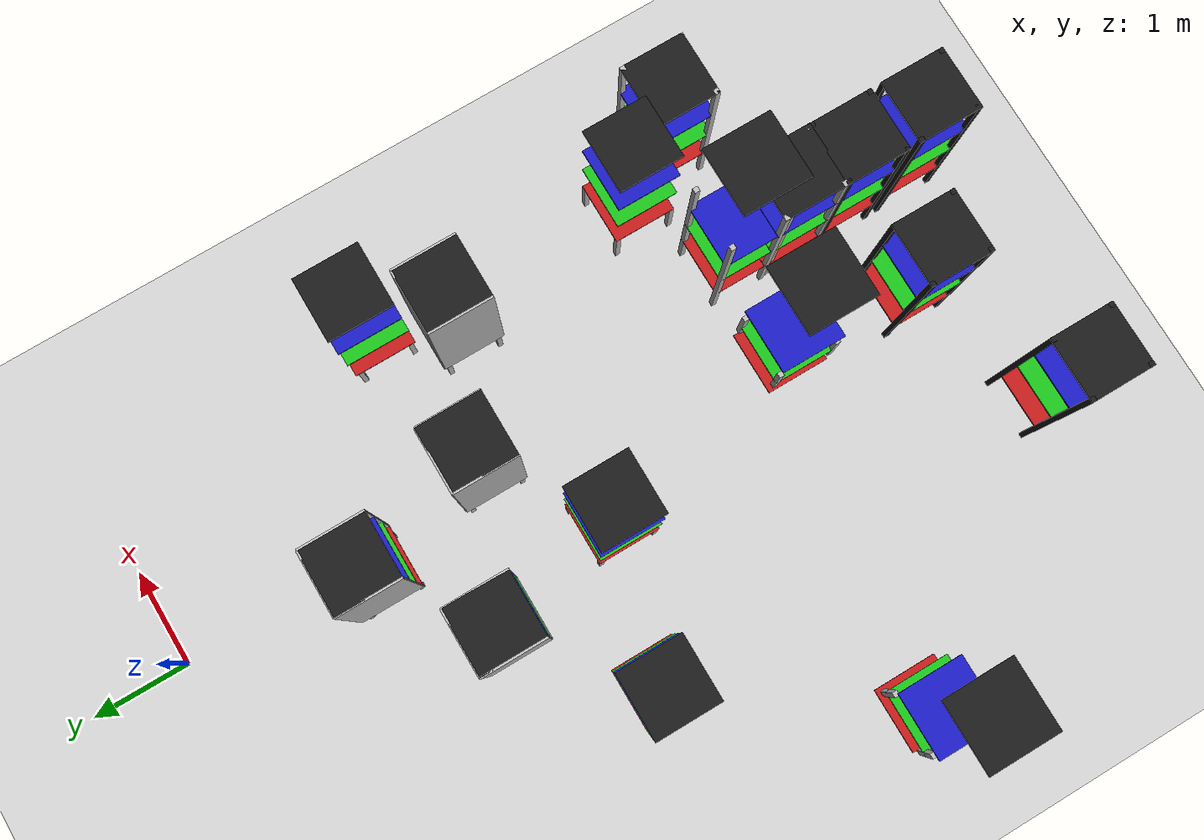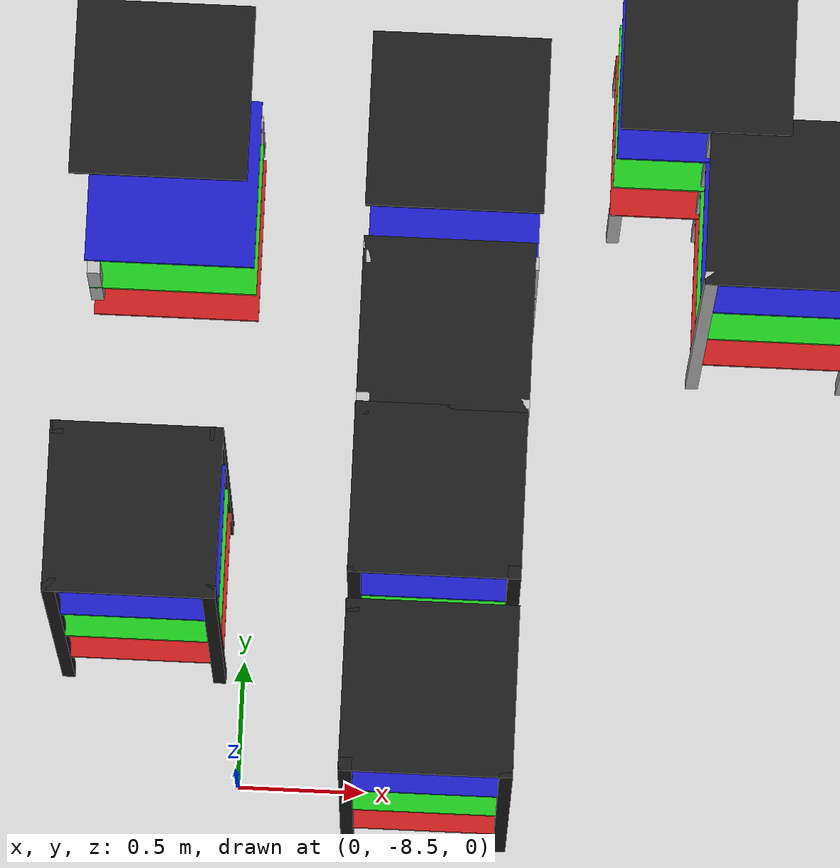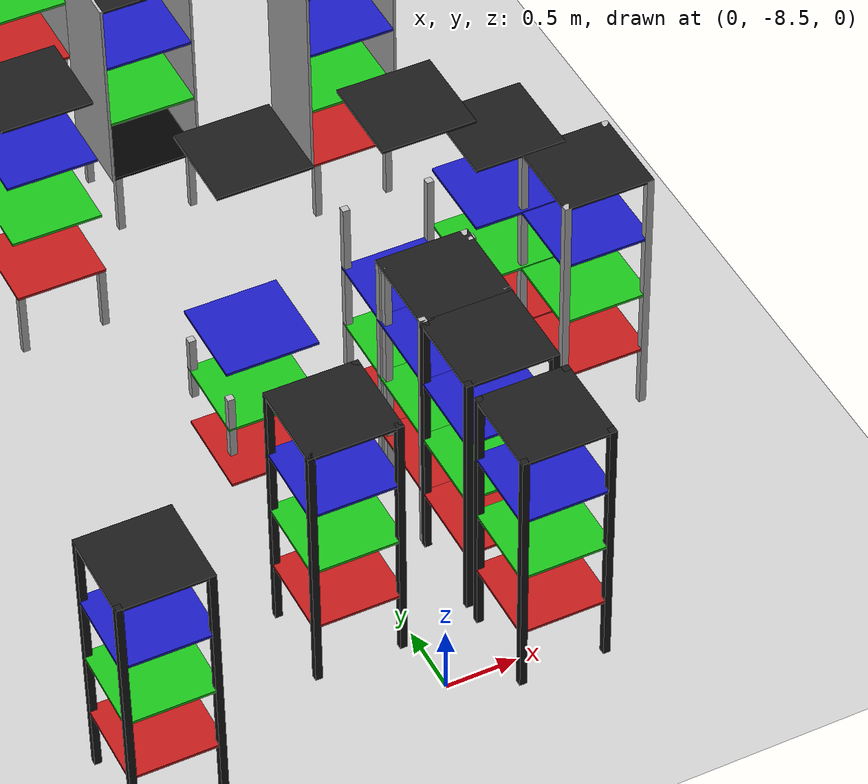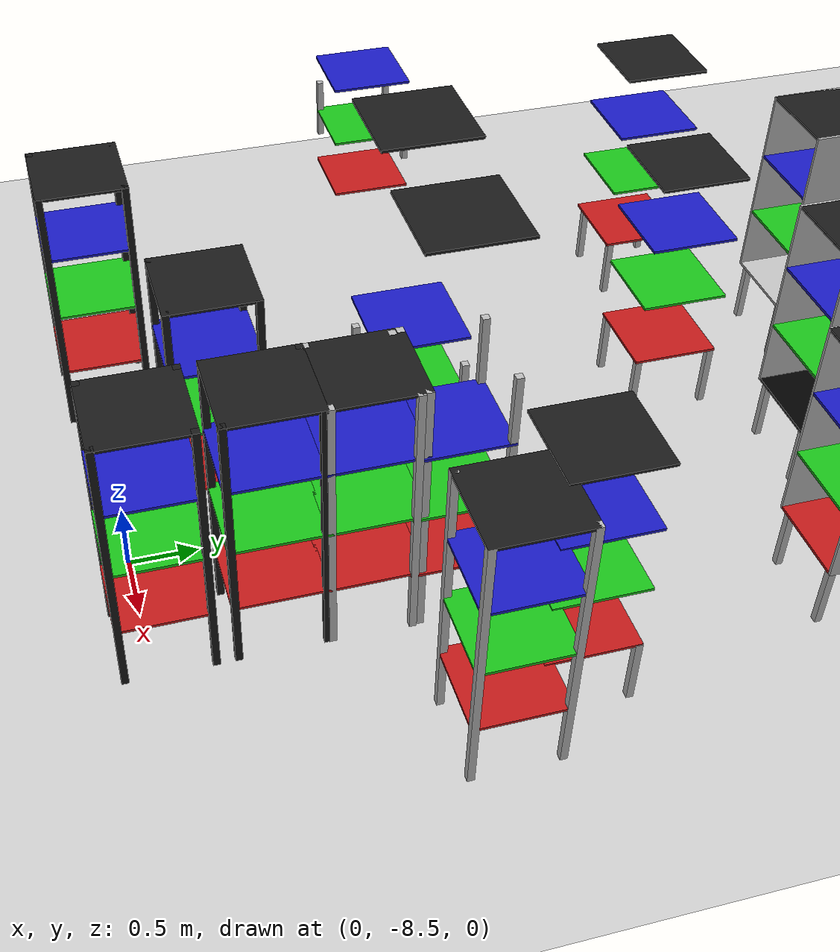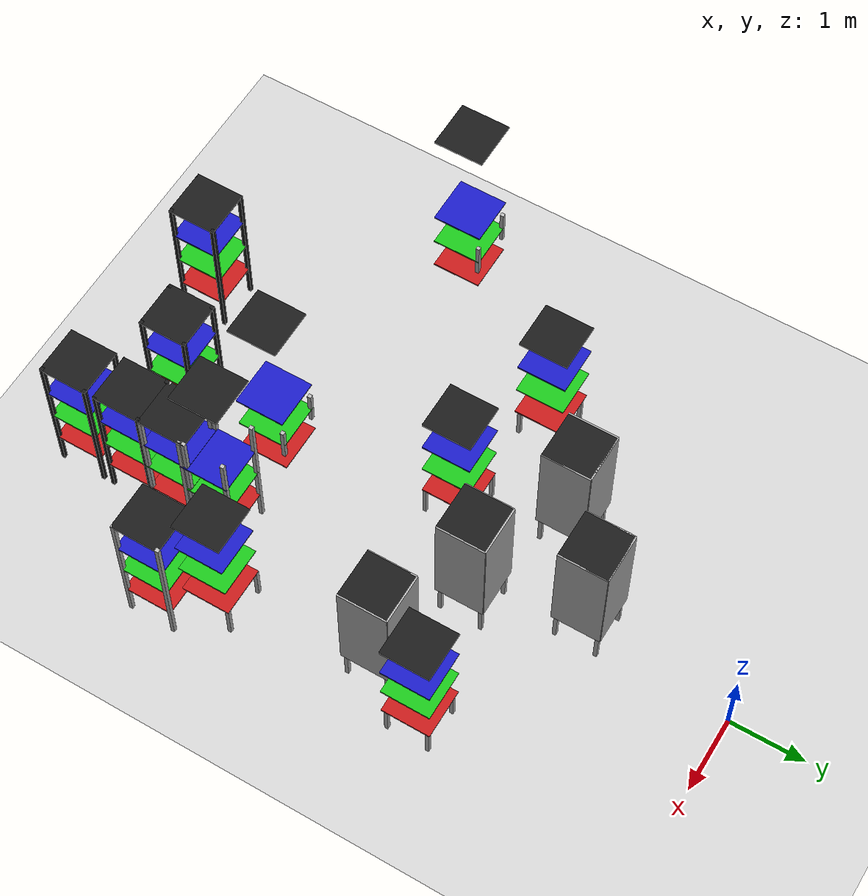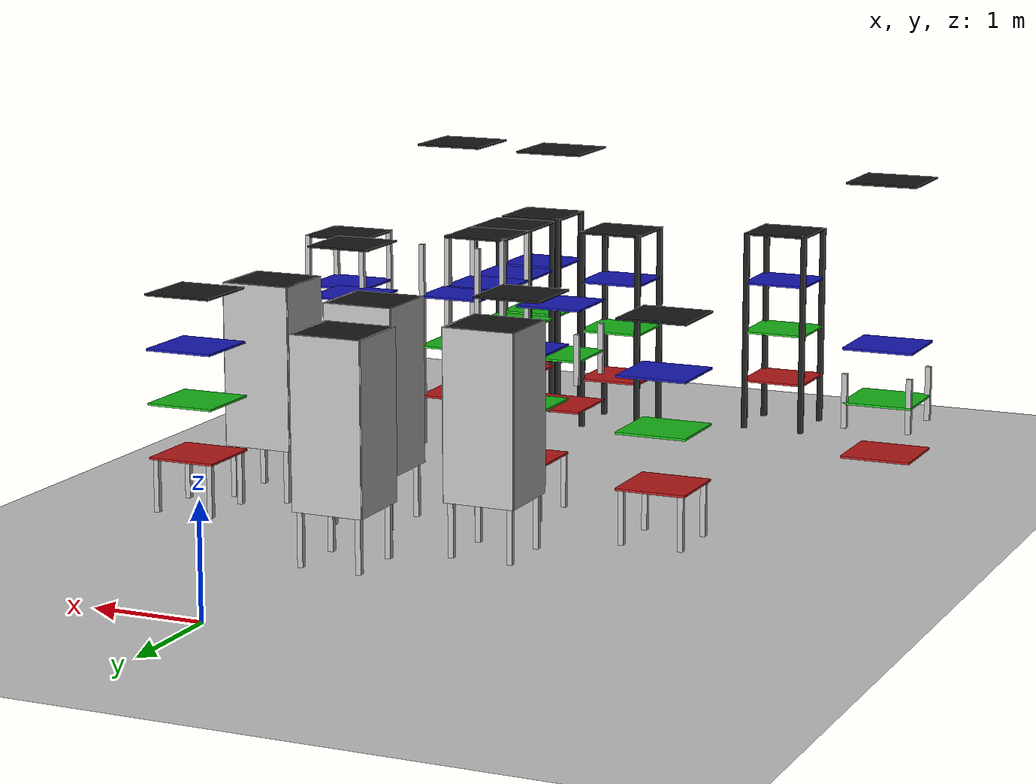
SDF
<sdf version="1.6">
 <world name="default">
  <model name="ground_plane">
   <static>1</static>
   <link name="link">
    <collision name="collision">
     <geometry><plane><normal>0 0 1</normal><size>50 50</size></plane></geometry>
     <surface><friction><ode><mu>100</mu><mu2>50</mu2></ode></friction></surface>
    </collision>
    <visual name="visual">
     <cast_shadows>0</cast_shadows>
     <geometry><plane><normal>0 0 1</normal><size>100 100</size></plane></geometry>
     <material>
      <script><uri>file://media/materials/scripts/gazebo.material</uri><name>Gazebo/Grey</name></script>
     </material>
    </visual>
    <velocity_decay><linear>0</linear><angular>0</angular></velocity_decay>
   </link>
  </model>
  <model name="warehouse_shelf_8">
   <static>1</static>
   <pose>-0.228834 -2.00958 0 0 -0 0</pose>
   <link name="main_block">
    <pose>0 0 1.255 0 -0 0</pose>
    <collision name="collision"><geometry><box><size>0.65 0.65 1.51</size></box></geometry></collision>
   </link>
   <link name="leg_1">
    <pose>0.275 0.275 0.25 0 -0 0</pose>
    <collision name="collision"><geometry><box><size>0.05 0.05 0.5</size></box></geometry></collision>
    <visual name="visual"><geometry><box><size>0.05 0.05 0.5</size></box></geometry></visual>
   </link>
   <link name="leg_2">
    <pose>-0.275 0.275 0.25 0 -0 0</pose>
    <collision name="collision"><geometry><box><size>0.05 0.05 0.5</size></box></geometry></collision>
    <visual name="visual"><geometry><box><size>0.05 0.05 0.5</size></box></geometry></visual>
   </link>
   <link name="leg_3">
    <pose>-0.275 -0.275 0.25 0 -0 0</pose>
    <collision name="collision"><geometry><box><size>0.05 0.05 0.5</size></box></geometry></collision>
    <visual name="visual"><geometry><box><size>0.05 0.05 0.5</size></box></geometry></visual>
   </link>
   <link name="leg_4">
    <pose>0.275 -0.275 0.25 0 -0 0</pose>
    <collision name="collision"><geometry><box><size>0.05 0.05 0.5</size></box></geometry></collision>
    <visual name="visual"><geometry><box><size>0.05 0.05 0.5</size></box></geometry></visual>
   </link>
   <link name="shelf_0">
    <pose>0 0 0.5 0 -0 0</pose>
    <visual name="visual">
     <geometry><box><size>0.648 0.648 0.02</size></box></geometry>
     <material>
      <ambient>0.9 0.1 0.1 1</ambient>
      <diffuse>0.75 0.1 0.1 1</diffuse>
      <specular>0 0 0 0</specular>
      <emissive>0 0 0 1</emissive>
     </material>
    </visual>
   </link>
   <link name="shelf_1">
    <pose>0 0 1 0 -0 0</pose>
    <visual name="visual">
     <geometry><box><size>0.648 0.648 0.02</size></box></geometry>
     <material>
      <ambient>0.1 0.9 0.1 1</ambient>
      <diffuse>0.1 0.75 0.1 1</diffuse>
      <specular>1 1 1 0</specular>
      <emissive>0 0 0 1</emissive>
     </material>
    </visual>
   </link>
   <link name="shelf_2">
    <pose>0 0 1.5 0 -0 0</pose>
    <visual name="visual">
     <geometry><box><size>0.648 0.648 0.02</size></box></geometry>
     <material>
      <ambient>0.1 0.1 0.9 1</ambient>
      <diffuse>0.1 0.1 0.75 1</diffuse>
      <specular>0 0 0 0</specular>
      <emissive>0 0 0 1</emissive>
     </material>
    </visual>
   </link>
   <link name="shelf_top">
    <pose>0 0 2 0 -0 0</pose>
    <visual name="visual">
     <geometry><box><size>0.648 0.648 0.02</size></box></geometry>
     <material>
      <ambient>0.1 0.1 0.1 1</ambient>
      <diffuse>0.1 0.1 0.1 1</diffuse>
      <specular>0 0 0 0</specular>
      <emissive>0 0 0 1</emissive>
     </material>
    </visual>
   </link>
   <link name="side_left">
    <pose>0.324 0 1.25 0 -0 0</pose>
    <visual name="visual"><geometry><box><size>0.02 0.65 1.52</size></box></geometry></visual>
   </link>
   <link name="side_right">
    <pose>-0.324 0 1.25 0 -0 0</pose>
    <visual name="visual"><geometry><box><size>0.02 0.65 1.52</size></box></geometry></visual>
   </link>
   <link name="side_back">
    <pose>0 0.324 1.25 0 -0 0</pose>
    <visual name="visual"><geometry><box><size>0.65 0.02 1.52</size></box></geometry></visual>
   </link>
  </model>
  <model name="warehouse_shelf_13">
   <static>1</static>
   <pose>-1.25921 -2.79718 0 0 -0 0</pose>
   <link name="main_block">
    <pose>0 0 1.255 0 -0 0</pose>
    <collision name="collision"><geometry><box><size>0.65 0.65 1.51</size></box></geometry></collision>
   </link>
   <link name="leg_1">
    <pose>0.275 0.275 0.25 0 -0 0</pose>
    <collision name="collision"><geometry><box><size>0.05 0.05 0.5</size></box></geometry></collision>
    <visual name="visual"><geometry><box><size>0.05 0.05 0.5</size></box></geometry></visual>
   </link>
   <link name="leg_2">
    <pose>-0.275 0.275 0.25 0 -0 0</pose>
    <collision name="collision"><geometry><box><size>0.05 0.05 0.5</size></box></geometry></collision>
    <visual name="visual"><geometry><box><size>0.05 0.05 0.5</size></box></geometry></visual>
   </link>
   <link name="leg_3">
    <pose>-0.275 -0.275 0.25 0 -0 0</pose>
    <collision name="collision"><geometry><box><size>0.05 0.05 0.5</size></box></geometry></collision>
    <visual name="visual"><geometry><box><size>0.05 0.05 0.5</size></box></geometry></visual>
   </link>
   <link name="leg_4">
    <pose>0.275 -0.275 0.25 0 -0 0</pose>
    <collision name="collision"><geometry><box><size>0.05 0.05 0.5</size></box></geometry></collision>
    <visual name="visual"><geometry><box><size>0.05 0.05 0.5</size></box></geometry></visual>
   </link>
   <link name="shelf_0">
    <pose>0 0 0.5 0 -0 0</pose>
    <visual name="visual">
     <geometry><box><size>0.648 0.648 0.02</size></box></geometry>
     <material><ambient>0.9 0.1 0.1 1</ambient><diffuse>0.75 0.75 0.75 1</diffuse></material>
    </visual>
   </link>
   <link name="shelf_1">
    <pose>0 0 1 0 -0 0</pose>
    <visual name="visual">
     <geometry><box><size>0.648 0.648 0.02</size></box></geometry>
     <material><ambient>0.1 0.9 0.1 1</ambient><diffuse>0.1 0.75 0.1 1</diffuse></material>
    </visual>
   </link>
   <link name="shelf_2">
    <pose>0 0 1.5 0 -0 0</pose>
    <visual name="visual">
     <geometry><box><size>0.648 0.648 0.02</size></box></geometry>
     <material><ambient>0.1 0.1 0.9 1</ambient><diffuse>0.1 0.1 0.75 1</diffuse></material>
    </visual>
   </link>
   <link name="shelf_top">
    <pose>0 0 2 0 -0 0</pose>
    <visual name="visual">
     <geometry><box><size>0.648 0.648 0.02</size></box></geometry>
     <material><ambient>0.1 0.1 0.1 1</ambient><diffuse>0.1 0.1 0.1 1</diffuse></material>
    </visual>
   </link>
   <link name="side_left">
    <pose>0.324 0 1.25 0 -0 0</pose>
    <visual name="visual"><geometry><box><size>0.02 0.65 1.52</size></box></geometry></visual>
   </link>
   <link name="side_right">
    <pose>-0.324 0 1.25 0 -0 0</pose>
    <visual name="visual"><geometry><box><size>0.02 0.65 1.52</size></box></geometry></visual>
   </link>
   <link name="side_back">
    <pose>0 0.324 1.25 0 -0 0</pose>
    <visual name="visual"><geometry><box><size>0.65 0.02 1.52</size></box></geometry></visual>
   </link>
  </model>
  <model name="warehouse_shelf_14">
   <static>1</static>
   <pose>0.162209 -3.35207 0 0 -0 0</pose>
   <link name="main_block">
    <pose>0 0 1.255 0 -0 0</pose>
    <collision name="collision"><geometry><box><size>0.65 0.65 1.51</size></box></geometry></collision>
   </link>
   <link name="leg_1">
    <pose>0.275 0.275 0.25 0 -0 0</pose>
    <collision name="collision"><geometry><box><size>0.05 0.05 0.5</size></box></geometry></collision>
    <visual name="visual"><geometry><box><size>0.05 0.05 0.5</size></box></geometry></visual>
   </link>
   <link name="leg_2">
    <pose>-0.275 0.275 0.25 0 -0 0</pose>
    <collision name="collision"><geometry><box><size>0.05 0.05 0.5</size></box></geometry></collision>
    <visual name="visual"><geometry><box><size>0.05 0.05 0.5</size></box></geometry></visual>
   </link>
   <link name="leg_3">
    <pose>-0.275 -0.275 0.25 0 -0 0</pose>
    <collision name="collision"><geometry><box><size>0.05 0.05 0.5</size></box></geometry></collision>
    <visual name="visual"><geometry><box><size>0.05 0.05 0.5</size></box></geometry></visual>
   </link>
   <link name="leg_4">
    <pose>0.275 -0.275 0.25 0 -0 0</pose>
    <collision name="collision"><geometry><box><size>0.05 0.05 0.5</size></box></geometry></collision>
    <visual name="visual"><geometry><box><size>0.05 0.05 0.5</size></box></geometry></visual>
   </link>
   <link name="shelf_0">
    <pose>0 0 0.5 0 -0 0</pose>
    <visual name="visual">
     <geometry><box><size>0.648 0.648 0.02</size></box></geometry>
     <material><ambient>0.9 0.1 0.1 1</ambient><diffuse>0 0 0 1</diffuse></material>
    </visual>
   </link>
   <link name="shelf_1">
    <pose>0 0 1 0 -0 0</pose>
    <visual name="visual">
     <geometry><box><size>0.648 0.648 0.02</size></box></geometry>
     <material><ambient>0.1 0.9 0.1 1</ambient><diffuse>0.1 0.75 0.1 1</diffuse></material>
    </visual>
   </link>
   <link name="shelf_2">
    <pose>0 0 1.5 0 -0 0</pose>
    <visual name="visual">
     <geometry><box><size>0.648 0.648 0.02</size></box></geometry>
     <material><ambient>0.1 0.1 0.9 1</ambient><diffuse>0.1 0.1 0.75 1</diffuse></material>
    </visual>
   </link>
   <link name="shelf_top">
    <pose>0 0 2 0 -0 0</pose>
    <visual name="visual">
     <geometry><box><size>0.648 0.648 0.02</size></box></geometry>
     <material><ambient>0.1 0.1 0.1 1</ambient><diffuse>0.1 0.1 0.1 1</diffuse></material>
    </visual>
   </link>
   <link name="side_left">
    <pose>0.324 0 1.25 0 -0 0</pose>
    <visual name="visual"><geometry><box><size>0.02 0.65 1.52</size></box></geometry></visual>
   </link>
   <link name="side_right">
    <pose>-0.324 0 1.25 0 -0 0</pose>
    <visual name="visual"><geometry><box><size>0.02 0.65 1.52</size></box></geometry></visual>
   </link>
   <link name="side_back">
    <pose>0 0.324 1.25 0 -0 0</pose>
    <visual name="visual"><geometry><box><size>0.65 0.02 1.52</size></box></geometry></visual>
   </link>
  </model>
  <model name="warehouse_shelf_16">
   <static>1</static>
   <pose>1.82011 -3.08516 0 0 -0 0</pose>
   <link name="main_block">
    <pose>0 0 1.255 0 -0 0</pose>
    <collision name="collision"><geometry><box><size>0.65 0.65 1.51</size></box></geometry></collision>
   </link>
   <link name="leg_1">
    <pose>0.275 0.275 0.25 0 -0 0</pose>
    <collision name="collision"><geometry><box><size>0.05 0.05 0.5</size></box></geometry></collision>
    <visual name="visual"><geometry><box><size>0.05 0.05 0.5</size></box></geometry></visual>
   </link>
   <link name="leg_2">
    <pose>-0.275 0.275 0.25 0 -0 0</pose>
    <collision name="collision"><geometry><box><size>0.05 0.05 0.5</size></box></geometry></collision>
    <visual name="visual"><geometry><box><size>0.05 0.05 0.5</size></box></geometry></visual>
   </link>
   <link name="leg_3">
    <pose>-0.275 -0.275 0.25 0 -0 0</pose>
    <collision name="collision"><geometry><box><size>0.05 0.05 0.5</size></box></geometry></collision>
    <visual name="visual"><geometry><box><size>0.05 0.05 0.5</size></box></geometry></visual>
   </link>
   <link name="leg_4">
    <pose>0.275 -0.275 0.25 0 -0 0</pose>
    <collision name="collision"><geometry><box><size>0.05 0.05 0.5</size></box></geometry></collision>
    <visual name="visual"><geometry><box><size>0.05 0.05 0.5</size></box></geometry></visual>
   </link>
   <link name="shelf_0">
    <pose>0 0 0.5 0 -0 0</pose>
    <visual name="visual">
     <geometry><box><size>0.648 0.648 0.02</size></box></geometry>
     <material><ambient>0.75 0.1 0.1 1</ambient><diffuse>0.75 0.1 0.1 1</diffuse></material>
    </visual>
   </link>
   <link name="shelf_1">
    <pose>0 0 1 0 -0 0</pose>
    <visual name="visual">
     <geometry><box><size>0.648 0.648 0.02</size></box></geometry>
     <material><ambient>0.1 0.75 0.1 1</ambient><diffuse>0.1 0.75 0.1 1</diffuse></material>
    </visual>
   </link>
   <link name="shelf_2">
    <pose>0 0 1.5 0 -0 0</pose>
    <visual name="visual">
     <geometry><box><size>0.648 0.648 0.02</size></box></geometry>
     <material><ambient>0.1 0.1 0.75 1</ambient><diffuse>0.1 0.1 0.75 1</diffuse></material>
    </visual>
   </link>
   <link name="shelf_top">
    <pose>0 0 2 0 -0 0</pose>
    <visual name="visual">
     <geometry><box><size>0.648 0.648 0.02</size></box></geometry>
     <material><ambient>0.1 0.1 0.1 1</ambient><diffuse>0.1 0.1 0.1 1</diffuse></material>
    </visual>
   </link>
  </model>
  <model name="warehouse_shelf_17">
   <static>1</static>
   <pose>1.45479 -3.84981 0 0 -0 0</pose>
   <link name="main_block">
    <pose>0 0 1.255 0 -0 0</pose>
    <collision name="collision"><geometry><box><size>0.65 0.65 1.51</size></box></geometry></collision>
   </link>
   <link name="leg_1">
    <pose>0.275 0.275 0.25 0 -0 0</pose>
    <collision name="collision"><geometry><box><size>0.05 0.05 0.5</size></box></geometry></collision>
    <visual name="visual"><geometry><box><size>0.05 0.05 0.5</size></box></geometry></visual>
   </link>
   <link name="leg_2">
    <pose>-0.275 0.275 0.25 0 -0 0</pose>
    <collision name="collision"><geometry><box><size>0.05 0.05 0.5</size></box></geometry></collision>
    <visual name="visual"><geometry><box><size>0.05 0.05 0.5</size></box></geometry></visual>
   </link>
   <link name="leg_3">
    <pose>-0.275 -0.275 0.25 0 -0 0</pose>
    <collision name="collision"><geometry><box><size>0.05 0.05 0.5</size></box></geometry></collision>
    <visual name="visual"><geometry><box><size>0.05 0.05 0.5</size></box></geometry></visual>
   </link>
   <link name="leg_4">
    <pose>0.275 -0.275 0.25 0 -0 0</pose>
    <collision name="collision"><geometry><box><size>0.05 0.05 0.5</size></box></geometry></collision>
    <visual name="visual"><geometry><box><size>0.05 0.05 0.5</size></box></geometry></visual>
   </link>
   <link name="shelf_0">
    <pose>0 0 0.5 0 -0 0</pose>
    <visual name="visual">
     <geometry><box><size>0.648 0.648 0.02</size></box></geometry>
     <material><ambient>0.75 0.1 0.1 1</ambient><diffuse>0.75 0.1 0.1 1</diffuse></material>
    </visual>
   </link>
   <link name="shelf_1">
    <pose>0 0 1 0 -0 0</pose>
    <visual name="visual">
     <geometry><box><size>0.648 0.648 0.02</size></box></geometry>
     <material><ambient>0.1 0.75 0.1 1</ambient><diffuse>0.1 0.75 0.1 1</diffuse></material>
    </visual>
   </link>
   <link name="shelf_2">
    <pose>0 0 1.5 0 -0 0</pose>
    <visual name="visual">
     <geometry><box><size>0.648 0.648 0.02</size></box></geometry>
     <material><ambient>0.1 0.1 0.75 1</ambient><diffuse>0.1 0.1 0.75 1</diffuse></material>
    </visual>
   </link>
   <link name="shelf_top">
    <pose>0 0 2 0 -0 0</pose>
    <visual name="visual">
     <geometry><box><size>0.648 0.648 0.02</size></box></geometry>
     <material><ambient>0.1 0.1 0.1 1</ambient><diffuse>0.1 0.1 0.1 1</diffuse></material>
    </visual>
   </link>
   <link name="side_left">
    <pose>0.324 0 1.25 0 -0 0</pose>
    <visual name="visual"><geometry><box><size>0.02 0.65 1.52</size></box></geometry></visual>
   </link>
   <link name="side_right">
    <pose>-0.324 0 1.25 0 -0 0</pose>
    <visual name="visual"><geometry><box><size>0.02 0.65 1.52</size></box></geometry></visual>
   </link>
   <link name="side_back">
    <pose>0 0.324 1.25 0 -0 0</pose>
    <visual name="visual"><geometry><box><size>0.65 0.02 1.52</size></box></geometry></visual>
   </link>
  </model>
  <model name="warehouse_shelf_19">
   <static>1</static>
   <pose>-2.4316 -3.7612 0 0 -0 0</pose>
   <link name="main_block">
    <pose>0 0 1.255 0 -0 0</pose>
    <collision name="collision"><geometry><box><size>0.65 0.65 1.51</size></box></geometry></collision>
   </link>
   <link name="leg_1">
    <pose>0.275 0.275 0.25 0 -0 0</pose>
    <collision name="collision"><geometry><box><size>0.05 0.05 0.5</size></box></geometry></collision>
    <visual name="visual"><geometry><box><size>0.05 0.05 0.5</size></box></geometry></visual>
   </link>
   <link name="leg_2">
    <pose>-0.275 0.275 0.25 0 -0 0</pose>
    <collision name="collision"><geometry><box><size>0.05 0.05 0.5</size></box></geometry></collision>
    <visual name="visual"><geometry><box><size>0.05 0.05 0.5</size></box></geometry></visual>
   </link>
   <link name="leg_3">
    <pose>-0.275 -0.275 0.25 0 -0 0</pose>
    <collision name="collision"><geometry><box><size>0.05 0.05 0.5</size></box></geometry></collision>
    <visual name="visual"><geometry><box><size>0.05 0.05 0.5</size></box></geometry></visual>
   </link>
   <link name="leg_4">
    <pose>0.275 -0.275 0.25 0 -0 0</pose>
    <collision name="collision"><geometry><box><size>0.05 0.05 0.5</size></box></geometry></collision>
    <visual name="visual"><geometry><box><size>0.05 0.05 0.5</size></box></geometry></visual>
   </link>
   <link name="shelf_0">
    <pose>0 0 0.5 0 -0 0</pose>
    <visual name="visual">
     <geometry><box><size>0.648 0.648 0.02</size></box></geometry>
     <material><ambient>0.75 0.1 0.1 1</ambient><diffuse>0.75 0.1 0.1 1</diffuse></material>
    </visual>
   </link>
   <link name="shelf_1">
    <pose>0 0 1 0 -0 0</pose>
    <visual name="visual">
     <geometry><box><size>0.648 0.648 0.02</size></box></geometry>
     <material><ambient>0.1 0.75 0.1 1</ambient><diffuse>0.1 0.75 0.1 1</diffuse></material>
    </visual>
   </link>
   <link name="shelf_2">
    <pose>0 0 1.5 0 -0 0</pose>
    <visual name="visual">
     <geometry><box><size>0.648 0.648 0.02</size></box></geometry>
     <material><ambient>0.1 0.1 0.75 1</ambient><diffuse>0.1 0.1 0.75 1</diffuse></material>
    </visual>
   </link>
   <link name="shelf_top">
    <pose>0 0 2 0 -0 0</pose>
    <visual name="visual">
     <geometry><box><size>0.648 0.648 0.02</size></box></geometry>
     <material><ambient>0.1 0.1 0.1 1</ambient><diffuse>0.1 0.1 0.1 1</diffuse></material>
    </visual>
   </link>
  </model>
  <model name="warehouse_shelf_20">
   <static>1</static>
   <pose>-0.89725 -4.16883 0 0 -0 0</pose>
   <link name="main_block">
    <pose>0 0 1.255 0 -0 0</pose>
    <collision name="collision"><geometry><box><size>0.65 0.65 1.51</size></box></geometry></collision>
   </link>
   <link name="leg_1">
    <pose>0.295 0.295 0.25 0 -0 0</pose>
    <collision name="collision"><geometry><box><size>0.05 0.05 0.5</size></box></geometry></collision>
    <visual name="visual"><geometry><box><size>0.05 0.05 0.5</size></box></geometry></visual>
   </link>
   <link name="leg_2">
    <pose>-0.295 0.295 0.25 0 -0 0</pose>
    <collision name="collision"><geometry><box><size>0.05 0.05 0.5</size></box></geometry></collision>
    <visual name="visual"><geometry><box><size>0.05 0.05 0.5</size></box></geometry></visual>
   </link>
   <link name="leg_3">
    <pose>-0.295 -0.295 0.25 0 -0 0</pose>
    <collision name="collision"><geometry><box><size>0.05 0.05 0.5</size></box></geometry></collision>
    <visual name="visual"><geometry><box><size>0.05 0.05 0.5</size></box></geometry></visual>
   </link>
   <link name="leg_4">
    <pose>0.295 -0.295 0.25 0 -0 0</pose>
    <collision name="collision"><geometry><box><size>0.05 0.05 0.5</size></box></geometry></collision>
    <visual name="visual"><geometry><box><size>0.05 0.05 0.5</size></box></geometry></visual>
   </link>
   <link name="shelf_0">
    <pose>0 0 0.5 0 -0 0</pose>
    <visual name="visual">
     <geometry><box><size>0.648 0.648 0.02</size></box></geometry>
     <material><ambient>0.75 0.1 0.1 1</ambient><diffuse>0.75 0.1 0.1 1</diffuse></material>
    </visual>
   </link>
   <link name="shelf_1">
    <pose>0 0 1 0 -0 0</pose>
    <visual name="visual">
     <geometry><box><size>0.648 0.648 0.02</size></box></geometry>
     <material><ambient>0.1 0.75 0.1 1</ambient><diffuse>0.1 0.75 0.1 1</diffuse></material>
    </visual>
   </link>
   <link name="shelf_2">
    <pose>0 0 1.5 0 -0 0</pose>
    <visual name="visual">
     <geometry><box><size>0.648 0.648 0.02</size></box></geometry>
     <material><ambient>0.1 0.1 0.75 1</ambient><diffuse>0.1 0.1 0.75 1</diffuse></material>
    </visual>
   </link>
   <link name="shelf_top">
    <pose>0 0 2 0 -0 0</pose>
    <visual name="visual">
     <geometry><box><size>0.648 0.648 0.02</size></box></geometry>
     <material><ambient>0.1 0.1 0.1 1</ambient><diffuse>0.1 0.1 0.1 1</diffuse></material>
    </visual>
   </link>
  </model>
  <model name="warehouse_shelf_21">
   <static>1</static>
   <pose>1.6903 -5.89932 0 0 -0 0</pose>
   <link name="main_block">
    <pose>0 0 1.255 0 -0 0</pose>
    <collision name="collision"><geometry><box><size>0.65 0.65 1.51</size></box></geometry></collision>
   </link>
   <link name="leg_1">
    <pose>0.3 0.3 0.25 0 -0 0</pose>
    <collision name="collision"><geometry><box><size>0.05 0.05 0.5</size></box></geometry></collision>
    <visual name="visual"><geometry><box><size>0.05 0.05 0.5</size></box></geometry></visual>
   </link>
   <link name="leg_2">
    <pose>-0.3 0.3 0.25 0 -0 0</pose>
    <collision name="collision"><geometry><box><size>0.05 0.05 0.5</size></box></geometry></collision>
    <visual name="visual"><geometry><box><size>0.05 0.05 0.5</size></box></geometry></visual>
   </link>
   <link name="leg_3">
    <pose>-0.3 -0.3 0.25 0 -0 0</pose>
    <collision name="collision"><geometry><box><size>0.05 0.05 0.5</size></box></geometry></collision>
    <visual name="visual"><geometry><box><size>0.05 0.05 0.5</size></box></geometry></visual>
   </link>
   <link name="leg_4">
    <pose>-0.3 -0.3 0.25 0 -0 0</pose>
    <collision name="collision"><geometry><box><size>0.05 0.05 0.5</size></box></geometry></collision>
    <visual name="visual"><geometry><box><size>0.05 0.05 0.5</size></box></geometry></visual>
   </link>
   <link name="shelf_0">
    <pose>0 0 0.5 0 -0 0</pose>
    <visual name="visual">
     <geometry><box><size>0.648 0.648 0.02</size></box></geometry>
     <material><ambient>0.75 0.1 0.1 1</ambient><diffuse>0.75 0.1 0.1 1</diffuse></material>
    </visual>
   </link>
   <link name="shelf_1">
    <pose>0 0 1 0 -0 0</pose>
    <visual name="visual">
     <geometry><box><size>0.648 0.648 0.02</size></box></geometry>
     <material><ambient>0.1 0.75 0.1 1</ambient><diffuse>0.1 0.75 0.1 1</diffuse></material>
    </visual>
   </link>
   <link name="shelf_2">
    <pose>0 0 1.5 0 -0 0</pose>
    <visual name="visual">
     <geometry><box><size>0.648 0.648 0.02</size></box></geometry>
     <material><ambient>0.1 0.1 0.75 1</ambient><diffuse>0.1 0.1 0.75 1</diffuse></material>
    </visual>
   </link>
   <link name="shelf_top">
    <pose>0 0 2 0 -0 0</pose>
    <visual name="visual">
     <geometry><box><size>0.648 0.648 0.02</size></box></geometry>
     <material><ambient>0.1 0.1 0.1 1</ambient><diffuse>0.1 0.1 0.1 1</diffuse></material>
    </visual>
   </link>
  </model>
  <model name="warehouse_shelf_22">
   <static>1</static>
   <pose>-0.325574 -6.38622 0 0 -0 0</pose>
   <link name="main_block">
    <pose>0 0 1.25 0 -0 0</pose>
    <collision name="collision"><geometry><box><size>0.65 0.65 1.5</size></box></geometry></collision>
   </link>
   <link name="leg_1">
    <pose>0.3 0.3 1 0 -0 0</pose>
    <collision name="collision"><geometry><box><size>0.05 0.05 2</size></box></geometry></collision>
    <visual name="visual"><geometry><box><size>0.05 0.05 0.5</size></box></geometry></visual>
   </link>
   <link name="leg_2">
    <pose>-0.3 0.3 1 0 -0 0</pose>
    <collision name="collision"><geometry><box><size>0.05 0.05 2</size></box></geometry></collision>
    <visual name="visual"><geometry><box><size>0.05 0.05 0.5</size></box></geometry></visual>
   </link>
   <link name="leg_3">
    <pose>-0.3 -0.3 1 0 -0 0</pose>
    <collision name="collision"><geometry><box><size>0.05 0.05 2</size></box></geometry></collision>
    <visual name="visual"><geometry><box><size>0.05 0.05 0.5</size></box></geometry></visual>
   </link>
   <link name="leg_4">
    <pose>-0.3 -0.3 1 0 -0 0</pose>
    <collision name="collision"><geometry><box><size>0.05 0.05 2</size></box></geometry></collision>
    <visual name="visual"><geometry><box><size>0.05 0.05 0.5</size></box></geometry></visual>
   </link>
   <link name="shelf_0">
    <pose>0 0 0.48 0 -0 0</pose>
    <visual name="visual">
     <geometry><box><size>0.65 0.65 0.02</size></box></geometry>
     <material><ambient>0.75 0.1 0.1 1</ambient><diffuse>0.75 0.1 0.1 1</diffuse></material>
    </visual>
   </link>
   <link name="shelf_1">
    <pose>0 0 0.98 0 -0 0</pose>
    <visual name="visual">
     <geometry><box><size>0.65 0.65 0.02</size></box></geometry>
     <material><ambient>0.1 0.75 0.1 1</ambient><diffuse>0.1 0.75 0.1 1</diffuse></material>
    </visual>
   </link>
   <link name="shelf_2">
    <pose>0 0 1.48 0 -0 0</pose>
    <visual name="visual">
     <geometry><box><size>0.65 0.65 0.02</size></box></geometry>
     <material><ambient>0.1 0.1 0.75 1</ambient><diffuse>0.1 0.1 0.75 1</diffuse></material>
    </visual>
   </link>
   <link name="shelf_top">
    <pose>0 0 2.98 0 -0 0</pose>
    <visual name="visual">
     <geometry><box><size>0.65 0.65 0.02</size></box></geometry>
     <material><ambient>0.1 0.1 0.1 1</ambient><diffuse>0.1 0.1 0.1 1</diffuse></material>
    </visual>
   </link>
  </model>
  <model name="warehouse_shelf_23">
   <static>1</static>
   <pose>-3.82293 -5.74571 0 0 -0 0</pose>
   <link name="main_block">
    <pose>0 0 1.25 0 -0 0</pose>
    <collision name="collision"><geometry><box><size>0.65 0.65 1.5</size></box></geometry></collision>
   </link>
   <link name="leg_1">
    <pose>0.3 0.3 1 0 -0 0</pose>
    <collision name="collision"><geometry><box><size>0.05 0.05 2</size></box></geometry></collision>
    <visual name="visual"><geometry><box><size>0.05 0.05 0.5</size></box></geometry></visual>
   </link>
   <link name="leg_2">
    <pose>-0.3 0.3 1 0 -0 0</pose>
    <collision name="collision"><geometry><box><size>0.05 0.05 2</size></box></geometry></collision>
    <visual name="visual"><geometry><box><size>0.05 0.05 0.5</size></box></geometry></visual>
   </link>
   <link name="leg_3">
    <pose>-0.3 -0.3 1 0 -0 0</pose>
    <collision name="collision"><geometry><box><size>0.05 0.05 2</size></box></geometry></collision>
    <visual name="visual"><geometry><box><size>0.05 0.05 0.5</size></box></geometry></visual>
   </link>
   <link name="leg_4">
    <pose>-0.3 -0.3 1 0 -0 0</pose>
    <collision name="collision"><geometry><box><size>0.05 0.05 2</size></box></geometry></collision>
    <visual name="visual"><geometry><box><size>0.05 0.05 0.5</size></box></geometry></visual>
   </link>
   <link name="shelf_0">
    <pose>0 0 0.48 0 -0 0</pose>
    <visual name="visual">
     <geometry><box><size>0.65 0.65 0.02</size></box></geometry>
     <material><ambient>0.75 0.1 0.1 1</ambient><diffuse>0.75 0.1 0.1 1</diffuse></material>
    </visual>
   </link>
   <link name="shelf_1">
    <pose>0 0 0.98 0 -0 0</pose>
    <visual name="visual">
     <geometry><box><size>0.65 0.65 0.02</size></box></geometry>
     <material><ambient>0.1 0.75 0.1 1</ambient><diffuse>0.1 0.75 0.1 1</diffuse></material>
    </visual>
   </link>
   <link name="shelf_2">
    <pose>0 0 1.48 0 -0 0</pose>
    <visual name="visual">
     <geometry><box><size>0.65 0.65 0.02</size></box></geometry>
     <material><ambient>0.1 0.1 0.75 1</ambient><diffuse>0.1 0.1 0.75 1</diffuse></material>
    </visual>
   </link>
   <link name="shelf_top">
    <pose>0 0 2.98 0 -0 0</pose>
    <visual name="visual">
     <geometry><box><size>0.65 0.65 0.02</size></box></geometry>
     <material><ambient>0.1 0.1 0.1 1</ambient><diffuse>0.1 0.1 0.1 1</diffuse></material>
    </visual>
   </link>
  </model>
  <model name="warehouse_shelf_24">
   <static>1</static>
   <pose>0.756828 -6.45682 0 0 -0 0</pose>
   <link name="main_block">
    <pose>0 0 1.25 0 -0 0</pose>
    <collision name="collision"><geometry><box><size>0.65 0.65 1.5</size></box></geometry></collision>
   </link>
   <link name="leg_1">
    <pose>0.3 0.3 1 0 -0 0</pose>
    <collision name="collision"><geometry><box><size>0.05 0.05 2</size></box></geometry></collision>
    <visual name="visual"><geometry><box><size>0.05 0.05 2</size></box></geometry></visual>
   </link>
   <link name="leg_2">
    <pose>-0.3 0.3 1 0 -0 0</pose>
    <collision name="collision"><geometry><box><size>0.05 0.05 2</size></box></geometry></collision>
    <visual name="visual"><geometry><box><size>0.05 0.05 2</size></box></geometry></visual>
   </link>
   <link name="leg_3">
    <pose>-0.3 -0.3 1 0 -0 0</pose>
    <collision name="collision"><geometry><box><size>0.05 0.05 2</size></box></geometry></collision>
    <visual name="visual"><geometry><box><size>0.05 0.05 2</size></box></geometry></visual>
   </link>
   <link name="leg_4">
    <pose>0.3 -0.3 1 0 -0 0</pose>
    <collision name="collision"><geometry><box><size>0.05 0.05 2</size></box></geometry></collision>
    <visual name="visual"><geometry><box><size>0.05 0.05 2</size></box></geometry></visual>
   </link>
   <link name="shelf_0">
    <pose>0 0 0.48 0 -0 0</pose>
    <visual name="visual">
     <geometry><box><size>0.65 0.65 0.02</size></box></geometry>
     <material><ambient>0.75 0.1 0.1 1</ambient><diffuse>0.75 0.1 0.1 1</diffuse></material>
    </visual>
   </link>
   <link name="shelf_1">
    <pose>0 0 0.98 0 -0 0</pose>
    <visual name="visual">
     <geometry><box><size>0.65 0.65 0.02</size></box></geometry>
     <material><ambient>0.1 0.75 0.1 1</ambient><diffuse>0.1 0.75 0.1 1</diffuse></material>
    </visual>
   </link>
   <link name="shelf_2">
    <pose>0 0 1.48 0 -0 0</pose>
    <visual name="visual">
     <geometry><box><size>0.65 0.65 0.02</size></box></geometry>
     <material><ambient>0.1 0.1 0.75 1</ambient><diffuse>0.1 0.1 0.75 1</diffuse></material>
    </visual>
   </link>
   <link name="shelf_top">
    <pose>0 0 2.98 0 -0 0</pose>
    <visual name="visual">
     <geometry><box><size>0.65 0.65 0.02</size></box></geometry>
     <material><ambient>0.1 0.1 0.1 1</ambient><diffuse>0.1 0.1 0.1 1</diffuse></material>
    </visual>
   </link>
  </model>
  <model name="warehouse_shelf_26">
   <static>1</static>
   <pose>0.744288 -7.00275 0 0 -0 0</pose>
   <link name="main_block">
    <pose>0 0 1.25 0 -0 0</pose>
    <collision name="collision"><geometry><box><size>0.65 0.65 1.5</size></box></geometry></collision>
   </link>
   <link name="leg_1">
    <pose>0.3 0.3 1 0 -0 0</pose>
    <collision name="collision"><geometry><box><size>0.05 0.05 2</size></box></geometry></collision>
    <visual name="visual"><geometry><box><size>0.05 0.05 2</size></box></geometry></visual>
   </link>
   <link name="leg_2">
    <pose>-0.3 0.3 1 0 -0 0</pose>
    <collision name="collision"><geometry><box><size>0.05 0.05 2</size></box></geometry></collision>
    <visual name="visual"><geometry><box><size>0.05 0.05 2</size></box></geometry></visual>
   </link>
   <link name="leg_3">
    <pose>-0.3 -0.3 1 0 -0 0</pose>
    <collision name="collision"><geometry><box><size>0.05 0.05 2</size></box></geometry></collision>
    <visual name="visual"><geometry><box><size>0.05 0.05 2</size></box></geometry></visual>
   </link>
   <link name="leg_4">
    <pose>0.3 -0.3 1 0 -0 0</pose>
    <collision name="collision"><geometry><box><size>0.05 0.05 2</size></box></geometry></collision>
    <visual name="visual"><geometry><box><size>0.05 0.05 2</size></box></geometry></visual>
   </link>
   <link name="shelf_0">
    <pose>0 0 0.49 0 -0 0</pose>
    <visual name="visual">
     <geometry><box><size>0.65 0.65 0.02</size></box></geometry>
     <material><ambient>0.75 0.1 0.1 1</ambient><diffuse>0.75 0.1 0.1 1</diffuse></material>
    </visual>
   </link>
   <link name="shelf_1">
    <pose>0 0 0.99 0 -0 0</pose>
    <visual name="visual">
     <geometry><box><size>0.65 0.65 0.02</size></box></geometry>
     <material><ambient>0.1 0.75 0.1 1</ambient><diffuse>0.1 0.75 0.1 1</diffuse></material>
    </visual>
   </link>
   <link name="shelf_2">
    <pose>0 0 1.49 0 -0 0</pose>
    <visual name="visual">
     <geometry><box><size>0.65 0.65 0.02</size></box></geometry>
     <material><ambient>0.1 0.1 0.75 1</ambient><diffuse>0.1 0.1 0.75 1</diffuse></material>
    </visual>
   </link>
   <link name="shelf_top">
    <pose>0 0 1.99 0 -0 0</pose>
    <visual name="visual">
     <geometry><box><size>0.65 0.65 0.02</size></box></geometry>
     <material><ambient>0.1 0.1 0.1 1</ambient><diffuse>0.1 0.1 0.1 1</diffuse></material>
    </visual>
   </link>
  </model>
  <model name="warehouse_shelf_27">
   <static>1</static>
   <pose>2.03149 -6.4824 0 0 -0 0</pose>
   <link name="main_block">
    <pose>0 0 1.25 0 -0 0</pose>
    <collision name="collision"><geometry><box><size>0.65 0.65 1.5</size></box></geometry></collision>
   </link>
   <link name="leg_1">
    <pose>0.3 0.3 1 0 -0 0</pose>
    <collision name="collision"><geometry><box><size>0.05 0.05 2</size></box></geometry></collision>
    <visual name="visual"><geometry><box><size>0.05 0.05 2</size></box></geometry></visual>
   </link>
   <link name="leg_2">
    <pose>-0.3 0.3 1 0 -0 0</pose>
    <collision name="collision"><geometry><box><size>0.05 0.05 2</size></box></geometry></collision>
    <visual name="visual"><geometry><box><size>0.05 0.05 2</size></box></geometry></visual>
   </link>
   <link name="leg_3">
    <pose>-0.3 -0.3 1 0 -0 0</pose>
    <collision name="collision"><geometry><box><size>0.05 0.05 2</size></box></geometry></collision>
    <visual name="visual"><geometry><box><size>0.05 0.05 2</size></box></geometry></visual>
   </link>
   <link name="leg_4">
    <pose>0.3 -0.3 1 0 -0 0</pose>
    <collision name="collision"><geometry><box><size>0.05 0.05 2</size></box></geometry></collision>
    <visual name="visual"><geometry><box><size>0.05 0.05 2</size></box></geometry></visual>
   </link>
   <link name="shelf_0">
    <pose>0 0 0.49 0 -0 0</pose>
    <visual name="visual">
     <geometry><box><size>0.649 0.649 0.02</size></box></geometry>
     <material><ambient>0.75 0.1 0.1 1</ambient><diffuse>0.75 0.1 0.1 1</diffuse></material>
    </visual>
   </link>
   <link name="shelf_1">
    <pose>0 0 0.99 0 -0 0</pose>
    <visual name="visual">
     <geometry><box><size>0.649 0.649 0.02</size></box></geometry>
     <material><ambient>0.1 0.75 0.1 1</ambient><diffuse>0.1 0.75 0.1 1</diffuse></material>
    </visual>
   </link>
   <link name="shelf_2">
    <pose>0 0 1.49 0 -0 0</pose>
    <visual name="visual">
     <geometry><box><size>0.649 0.649 0.02</size></box></geometry>
     <material><ambient>0.1 0.1 0.75 1</ambient><diffuse>0.1 0.1 0.75 1</diffuse></material>
    </visual>
   </link>
   <link name="shelf_top">
    <pose>0 0 1.99 0 -0 0</pose>
    <visual name="visual">
     <geometry><box><size>0.649 0.649 0.02</size></box></geometry>
     <material><ambient>0.1 0.1 0.1 1</ambient><diffuse>0.1 0.1 0.1 1</diffuse></material>
    </visual>
   </link>
  </model>
  <model name="warehouse_shelf_28">
   <static>1</static>
   <pose>0.741501 -7.6359 0 0 -0 0</pose>
   <link name="main_block">
    <pose>0 0 1.25 0 -0 0</pose>
    <collision name="collision"><geometry><box><size>0.65 0.65 1.5</size></box></geometry></collision>
   </link>
   <link name="leg_1">
    <pose>0.3 0.3 1 0 -0 0</pose>
    <collision name="collision"><geometry><box><size>0.05 0.05 2</size></box></geometry></collision>
    <visual name="visual">
     <geometry><box><size>0.05 0.05 2</size></box></geometry>
     <material><ambient>0.1 0.1 0.1 1</ambient><diffuse>0.1 0.1 0.1 1</diffuse></material>
    </visual>
   </link>
   <link name="leg_2">
    <pose>-0.3 0.3 1 0 -0 0</pose>
    <collision name="collision"><geometry><box><size>0.05 0.05 2</size></box></geometry></collision>
    <visual name="visual">
     <geometry><box><size>0.05 0.05 2</size></box></geometry>
     <material><ambient>0.1 0.1 0.1 1</ambient><diffuse>0.1 0.1 0.1 1</diffuse></material>
    </visual>
   </link>
   <link name="leg_3">
    <pose>-0.3 -0.3 1 0 -0 0</pose>
    <collision name="collision"><geometry><box><size>0.05 0.05 2</size></box></geometry></collision>
    <visual name="visual">
     <geometry><box><size>0.05 0.05 2</size></box></geometry>
     <material><ambient>0.1 0.1 0.1 1</ambient><diffuse>0.1 0.1 0.1 1</diffuse></material>
    </visual>
   </link>
   <link name="leg_4">
    <pose>0.3 -0.3 1 0 -0 0</pose>
    <collision name="collision"><geometry><box><size>0.05 0.05 2</size></box></geometry></collision>
    <visual name="visual">
     <geometry><box><size>0.05 0.05 2</size></box></geometry>
     <material><ambient>0.1 0.1 0.1 1</ambient><diffuse>0.1 0.1 0.1 1</diffuse></material>
    </visual>
   </link>
   <link name="shelf_0">
    <pose>0 0 0.49 0 -0 0</pose>
    <visual name="visual">
     <geometry><box><size>0.649 0.649 0.02</size></box></geometry>
     <material><ambient>0.75 0.1 0.1 1</ambient><diffuse>0.75 0.1 0.1 1</diffuse></material>
    </visual>
   </link>
   <link name="shelf_1">
    <pose>0 0 0.99 0 -0 0</pose>
    <visual name="visual">
     <geometry><box><size>0.649 0.649 0.02</size></box></geometry>
     <material><ambient>0.1 0.75 0.1 1</ambient><diffuse>0.1 0.75 0.1 1</diffuse></material>
    </visual>
   </link>
   <link name="shelf_2">
    <pose>0 0 1.49 0 -0 0</pose>
    <visual name="visual">
     <geometry><box><size>0.649 0.649 0.02</size></box></geometry>
     <material><ambient>0.1 0.1 0.75 1</ambient><diffuse>0.1 0.1 0.75 1</diffuse></material>
    </visual>
   </link>
   <link name="shelf_top">
    <pose>0 0 1.99 0 -0 0</pose>
    <visual name="visual">
     <geometry><box><size>0.649 0.649 0.02</size></box></geometry>
     <material><ambient>0.1 0.1 0.1 1</ambient><diffuse>0.1 0.1 0.1 1</diffuse></material>
    </visual>
   </link>
  </model>
  <model name="warehouse_shelf_29">
   <static>1</static>
   <pose>0.742392 -8.38477 0 0 -0 0</pose>
   <link name="main_block">
    <pose>0 0 1.25 0 -0 0</pose>
    <collision name="collision"><geometry><box><size>0.65 0.65 1.5</size></box></geometry></collision>
   </link>
   <link name="leg_1">
    <pose>0.3 0.3 1 0 -0 0</pose>
    <collision name="collision"><geometry><box><size>0.05 0.05 2</size></box></geometry></collision>
    <visual name="visual">
     <geometry><box><size>0.05 0.05 2</size></box></geometry>
     <material><ambient>0.1 0.1 0.1 1</ambient><diffuse>0.1 0.1 0.1 1</diffuse></material>
    </visual>
   </link>
   <link name="leg_2">
    <pose>-0.3 0.3 1 0 -0 0</pose>
    <collision name="collision"><geometry><box><size>0.05 0.05 2</size></box></geometry></collision>
    <visual name="visual">
     <geometry><box><size>0.05 0.05 2</size></box></geometry>
     <material><ambient>0.1 0.1 0.1 1</ambient><diffuse>0.1 0.1 0.1 1</diffuse></material>
    </visual>
   </link>
   <link name="leg_3">
    <pose>-0.3 -0.3 1 0 -0 0</pose>
    <collision name="collision"><geometry><box><size>0.05 0.05 2</size></box></geometry></collision>
    <visual name="visual">
     <geometry><box><size>0.05 0.05 2</size></box></geometry>
     <material><ambient>0.1 0.1 0.1 1</ambient><diffuse>0.1 0.1 0.1 1</diffuse></material>
    </visual>
   </link>
   <link name="leg_4">
    <pose>0.3 -0.3 1 0 -0 0</pose>
    <collision name="collision"><geometry><box><size>0.05 0.05 2</size></box></geometry></collision>
    <visual name="visual">
     <geometry><box><size>0.05 0.05 2</size></box></geometry>
     <material><ambient>0.1 0.1 0.1 1</ambient><diffuse>0.1 0.1 0.1 1</diffuse></material>
    </visual>
   </link>
   <link name="shelf_0">
    <pose>0 0 0.49 0 -0 0</pose>
    <visual name="visual">
     <geometry><box><size>0.649 0.649 0.02</size></box></geometry>
     <material><ambient>0.75 0.1 0.1 1</ambient><diffuse>0.75 0.1 0.1 1</diffuse></material>
    </visual>
   </link>
   <link name="shelf_1">
    <pose>0 0 0.99 0 -0 0</pose>
    <visual name="visual">
     <geometry><box><size>0.649 0.649 0.02</size></box></geometry>
     <material><ambient>0.1 0.75 0.1 1</ambient><diffuse>0.1 0.75 0.1 1</diffuse></material>
    </visual>
   </link>
   <link name="shelf_2">
    <pose>0 0 1.49 0 -0 0</pose>
    <visual name="visual">
     <geometry><box><size>0.649 0.649 0.02</size></box></geometry>
     <material><ambient>0.1 0.1 0.75 1</ambient><diffuse>0.1 0.1 0.75 1</diffuse></material>
    </visual>
   </link>
   <link name="shelf_top">
    <pose>0 0 1.99 0 -0 0</pose>
    <visual name="visual">
     <geometry><box><size>0.649 0.649 0.02</size></box></geometry>
     <material><ambient>0.1 0.1 0.1 1</ambient><diffuse>0.1 0.1 0.1 1</diffuse></material>
    </visual>
   </link>
  </model>
  <model name="warehouse_shelf_30">
   <static>1</static>
   <pose>-0.394309 -7.76197 0 0 -0 0</pose>
   <link name="main_block">
    <pose>0 0 1.25 0 -0 0</pose>
    <collision name="collision"><geometry><box><size>0.65 0.65 1.5</size></box></geometry></collision>
   </link>
   <link name="leg_1">
    <pose>0.3 0.3 1 0 -0 0</pose>
    <collision name="collision"><geometry><box><size>0.05 0.05 2</size></box></geometry></collision>
    <visual name="visual">
     <geometry><box><size>0.05 0.05 2</size></box></geometry>
     <material><ambient>0.1 0.1 0.1 1</ambient><diffuse>0.1 0.1 0.1 1</diffuse></material>
    </visual>
   </link>
   <link name="leg_2">
    <pose>-0.3 0.3 1 0 -0 0</pose>
    <collision name="collision"><geometry><box><size>0.05 0.05 2</size></box></geometry></collision>
    <visual name="visual">
     <geometry><box><size>0.05 0.05 2</size></box></geometry>
     <material><ambient>0.1 0.1 0.1 1</ambient><diffuse>0.1 0.1 0.1 1</diffuse></material>
    </visual>
   </link>
   <link name="leg_3">
    <pose>-0.3 -0.3 1 0 -0 0</pose>
    <collision name="collision"><geometry><box><size>0.05 0.05 2</size></box></geometry></collision>
    <visual name="visual">
     <geometry><box><size>0.05 0.05 2</size></box></geometry>
     <material><ambient>0.1 0.1 0.1 1</ambient><diffuse>0.1 0.1 0.1 1</diffuse></material>
    </visual>
   </link>
   <link name="leg_4">
    <pose>0.3 -0.3 1 0 -0 0</pose>
    <collision name="collision"><geometry><box><size>0.05 0.05 2</size></box></geometry></collision>
    <visual name="visual">
     <geometry><box><size>0.05 0.05 2</size></box></geometry>
     <material><ambient>0.1 0.1 0.1 1</ambient><diffuse>0.1 0.1 0.1 1</diffuse></material>
    </visual>
   </link>
   <link name="shelf_0">
    <pose>0 0 0.49 0 -0 0</pose>
    <visual name="visual">
     <geometry><box><size>0.649 0.649 0.02</size></box></geometry>
     <material><ambient>0.75 0.1 0.1 1</ambient><diffuse>0.75 0.1 0.1 1</diffuse></material>
    </visual>
   </link>
   <link name="shelf_1">
    <pose>0 0 0.99 0 -0 0</pose>
    <visual name="visual">
     <geometry><box><size>0.649 0.649 0.02</size></box></geometry>
     <material><ambient>0.1 0.75 0.1 1</ambient><diffuse>0.1 0.75 0.1 1</diffuse></material>
    </visual>
   </link>
   <link name="shelf_2">
    <pose>0 0 1.49 0 -0 0</pose>
    <visual name="visual">
     <geometry><box><size>0.649 0.649 0.02</size></box></geometry>
     <material><ambient>0.1 0.1 0.75 1</ambient><diffuse>0.1 0.1 0.75 1</diffuse></material>
    </visual>
   </link>
   <link name="shelf_top">
    <pose>0 0 1.99 0 -0 0</pose>
    <visual name="visual">
     <geometry><box><size>0.649 0.649 0.02</size></box></geometry>
     <material><ambient>0.1 0.1 0.1 1</ambient><diffuse>0.1 0.1 0.1 1</diffuse></material>
    </visual>
   </link>
  </model>
  <model name="warehouse_shelf_32">
   <static>1</static>
   <pose>-1.92599 -8.37406 0 0 -0 0</pose>
   <link name="main_block">
    <pose>0 0 1.25 0 -0 0</pose>
    <collision name="collision"><geometry><box><size>0.65 0.65 1.5</size></box></geometry></collision>
   </link>
   <link name="leg_1">
    <pose>0.3 0.3 1 0 -0 0</pose>
    <collision name="collision"><geometry><box><size>0.05 0.05 2</size></box></geometry></collision>
    <visual name="visual">
     <geometry><box><size>0.05 0.05 2</size></box></geometry>
     <material><ambient>0.1 0.1 0.1 1</ambient><diffuse>0.1 0.1 0.1 1</diffuse></material>
    </visual>
   </link>
   <link name="leg_2">
    <pose>-0.3 0.3 1 0 -0 0</pose>
    <collision name="collision"><geometry><box><size>0.05 0.05 2</size></box></geometry></collision>
    <visual name="visual">
     <geometry><box><size>0.05 0.05 2</size></box></geometry>
     <material><ambient>0.1 0.1 0.1 1</ambient><diffuse>0.1 0.1 0.1 1</diffuse></material>
    </visual>
   </link>
   <link name="leg_3">
    <pose>-0.3 -0.3 1 0 -0 0</pose>
    <collision name="collision"><geometry><box><size>0.05 0.05 2</size></box></geometry></collision>
    <visual name="visual">
     <geometry><box><size>0.05 0.05 2</size></box></geometry>
     <material><ambient>0.1 0.1 0.1 1</ambient><diffuse>0.1 0.1 0.1 1</diffuse></material>
    </visual>
   </link>
   <link name="leg_4">
    <pose>0.3 -0.3 1 0 -0 0</pose>
    <collision name="collision"><geometry><box><size>0.05 0.05 2</size></box></geometry></collision>
    <visual name="visual">
     <geometry><box><size>0.05 0.05 2</size></box></geometry>
     <material><ambient>0.1 0.1 0.1 1</ambient><diffuse>0.1 0.1 0.1 1</diffuse></material>
    </visual>
   </link>
   <link name="shelf_0">
    <pose>0 0 0.49 0 -0 0</pose>
    <visual name="visual">
     <geometry><box><size>0.649 0.649 0.02</size></box></geometry>
     <material><ambient>0.75 0.1 0.1 1</ambient><diffuse>0.75 0.1 0.1 1</diffuse></material>
    </visual>
   </link>
   <link name="shelf_1">
    <pose>0 0 0.99 0 -0 0</pose>
    <visual name="visual">
     <geometry><box><size>0.649 0.649 0.02</size></box></geometry>
     <material><ambient>0.1 0.75 0.1 1</ambient><diffuse>0.1 0.75 0.1 1</diffuse></material>
    </visual>
   </link>
   <link name="shelf_2">
    <pose>0 0 1.49 0 -0 0</pose>
    <visual name="visual">
     <geometry><box><size>0.649 0.649 0.02</size></box></geometry>
     <material><ambient>0.1 0.1 0.75 1</ambient><diffuse>0.1 0.1 0.75 1</diffuse></material>
    </visual>
   </link>
   <link name="shelf_top">
    <pose>0 0 1.99 0 -0 0</pose>
    <visual name="visual">
     <geometry><box><size>0.649 0.649 0.02</size></box></geometry>
     <material><ambient>0.1 0.1 0.1 1</ambient><diffuse>0.1 0.1 0.1 1</diffuse></material>
    </visual>
   </link>
  </model>
 </world>
</sdf>
